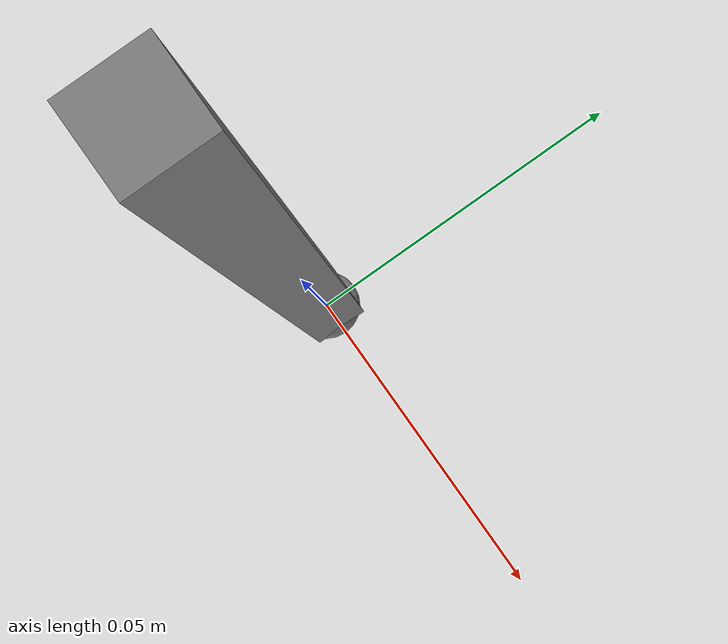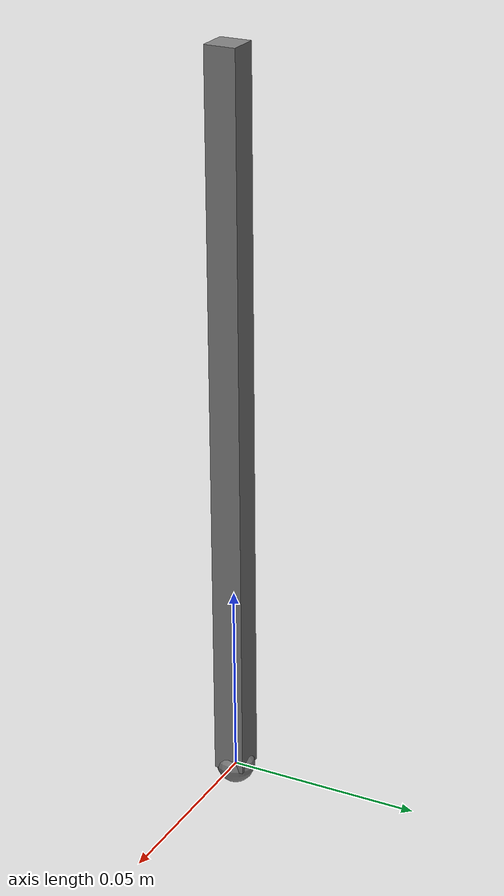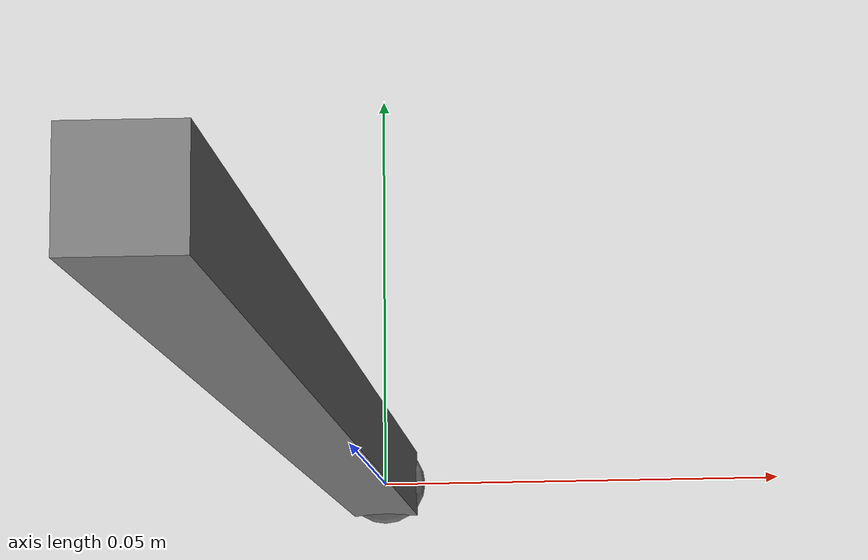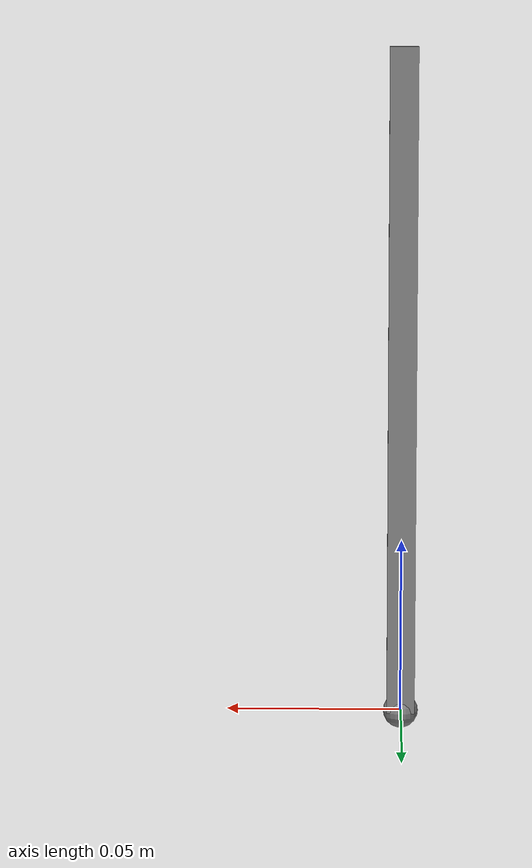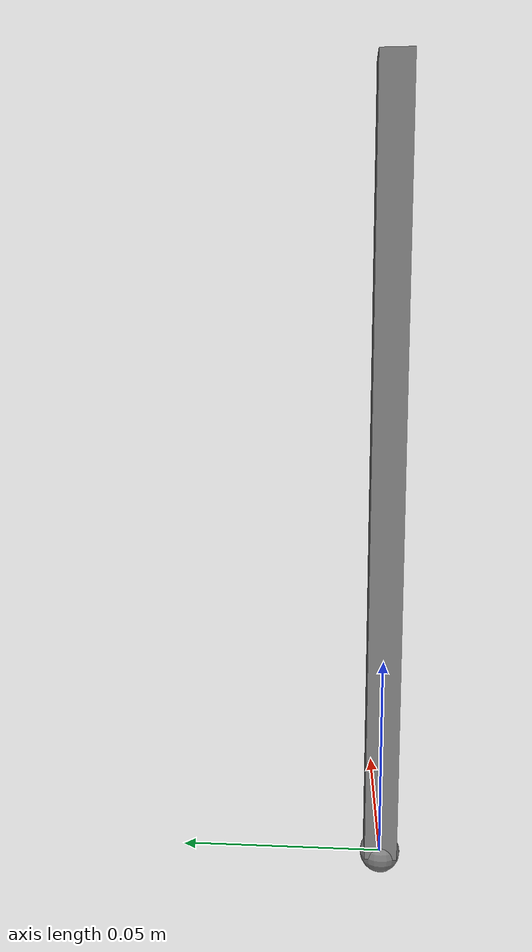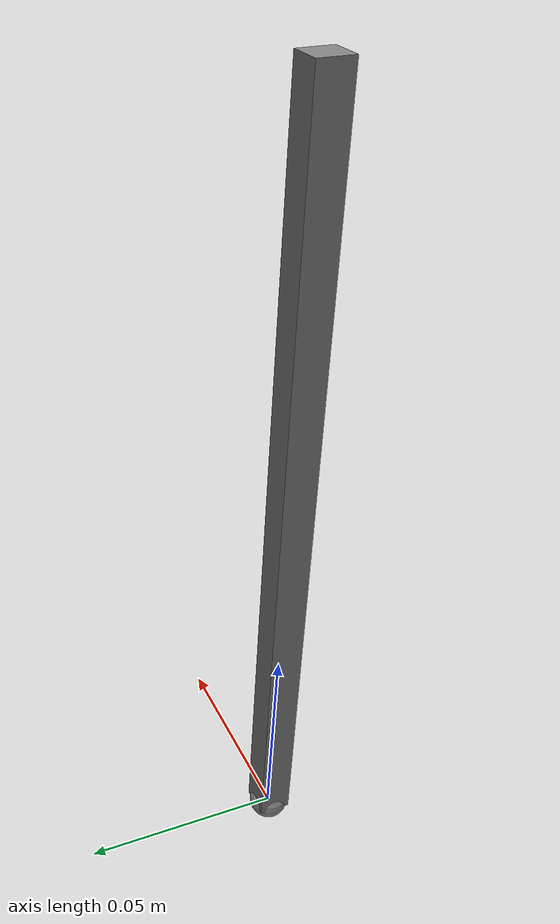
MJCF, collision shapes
<?xml version="1.0" ?>
<!-- @bbox dx=0.022 dy=0.022 dz=0.201 -->
<mujoco model="pipette_-_laboratory_essential_tool">
  <asset>
    <material name="Scene_-_Root" specular="0.4000000000000001" shininess="0.001" rgba="1.00000000 1.00000000 1.00000000 1.0"/>
    <mesh file="pipette_-_laboratory_essential_tool.obj"/>
    <mesh file="pipette_-_laboratory_essential_tool/pipette_-_laboratory_essential_tool_collision_0.obj"/>
  </asset>
  <worldbody>
    <body name="pipette_-_laboratory_essential_tool">
      <inertial pos="0 0 0.099966" mass="0.01" diaginertia="0.0008 0.0008 0.0005"/>
      <geom material="Scene_-_Root" mesh="pipette_-_laboratory_essential_tool" class="visual"/>
      <!-- 长方体碰撞体：半尺寸 (x, y, z) = (0.004, 0.004, 0.095) -->
      <!-- 总尺寸：宽 8mm, 深 8mm, 高 19cm -->
      <geom type="box" size="0.004 0.004 0.095" pos="0 0 0.095" class="collision"/>
      <site class="grasppoint" pos="0.0000 0.0000 0.1899"/>
      <!-- 吸液头位置：滴管底部，用于 aspirate/dispense 技能定位 -->
      <site name="aspirate_site" pos="0 0 0"/>
      <site name="bottom_site" pos="0 0 0"/>
    </body>
  </worldbody>
  <compiler boundmass="0.015" boundinertia="1e-05" angle="radian"/>
  <default>
    <default class="visual">
      <geom group="2" type="mesh" contype="0" conaffinity="0" density="50"/>
    </default>
    <default class="collision">
      <geom group="3" type="mesh" density="50" friction="1 1 1" solimp="0.95 0.99 0.001" solref="0.01 1"/>
    </default>
    <default class="grasppoint">
      <site type="sphere" size="0.005" group="4" rgba="0 0 1 1"/>
    </default>
  </default>
</mujoco>
